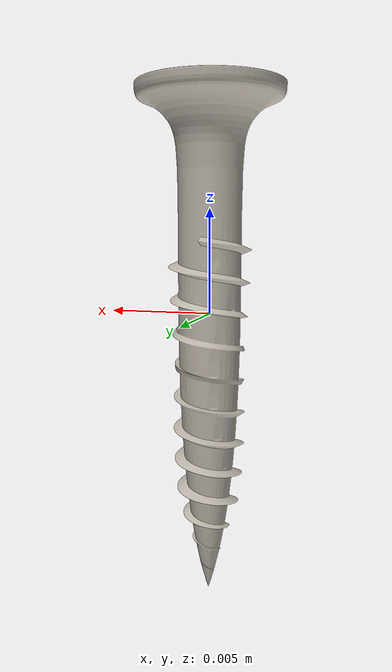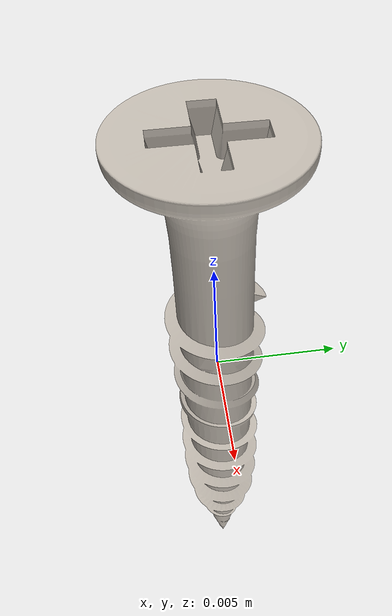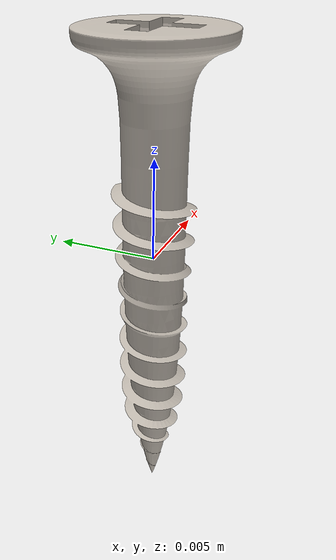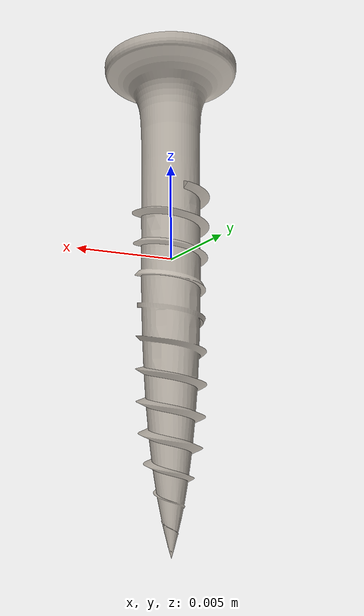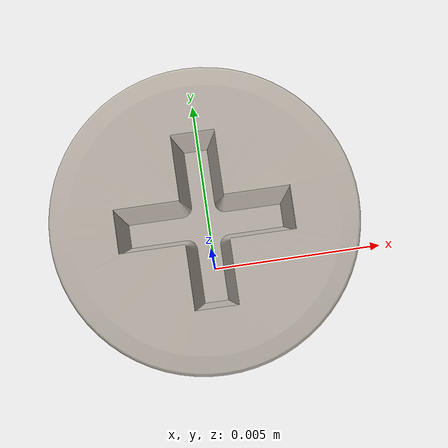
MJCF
<?xml version="1.0" encoding="UTF-8"?>
<mujoco model="screw_simple">
  <asset>
    <texture type="2d" file="textures/metal.png" name="metal_tex"/>
    <material name="metal_mat" texture="metal_tex" specular="0.9" shininess="0.7" reflectance="0.25"/>
    <mesh name="screw_simple_mesh" file="meshes/screw_simple.stl"/>
  </asset>
  <worldbody>
    <body name="screw_simple" pos="0 0 0">
      <freejoint name="screw_simple_joint"/>
      <geom name="screw_simple_visual" type="mesh" mesh="screw_simple_mesh"
            material="metal_mat" group="1" contype="0" conaffinity="0"/>
      <geom name="screw_simple_col" type="cylinder" group="3"
            size="0.00351666 0.0124999"
            pos="-0 -0 -0.00184766" quat="1 0 0 0"
            mass="0.001" friction="1.0 0.05 0.001" condim="4"/>
    </body>
  </worldbody>
</mujoco>
